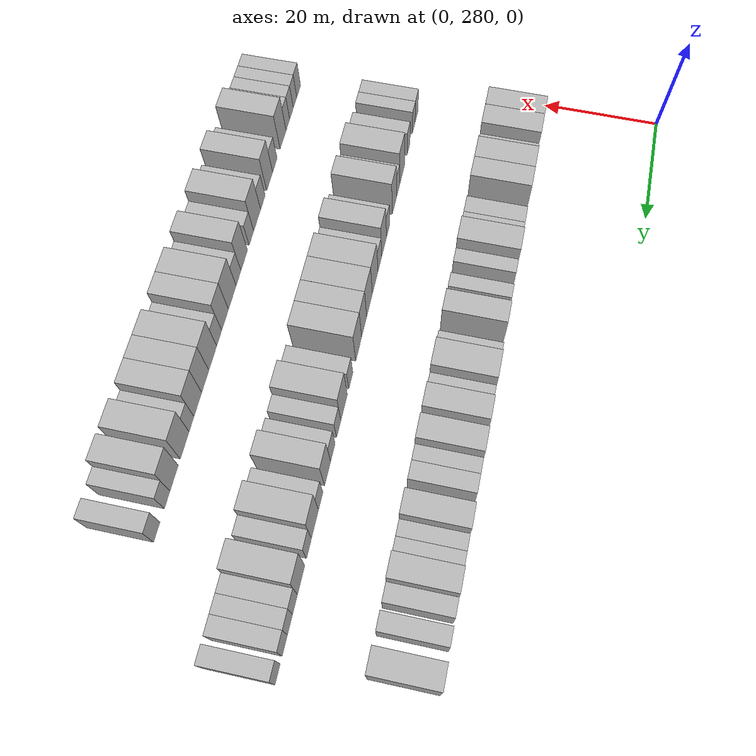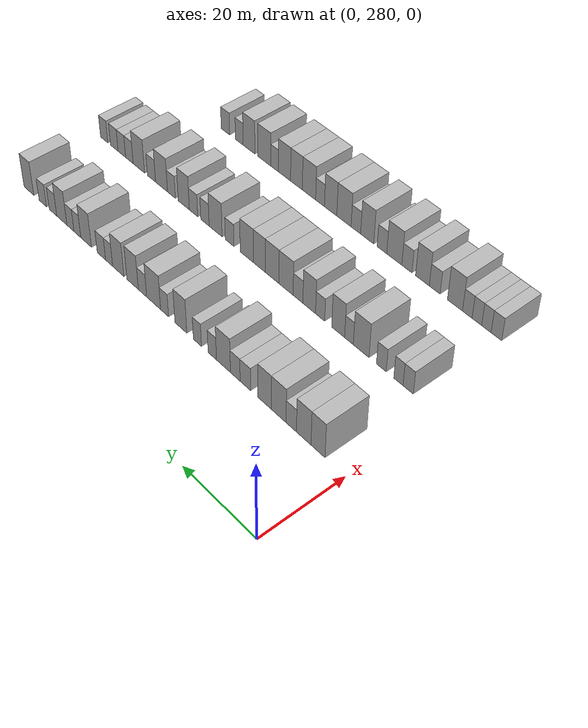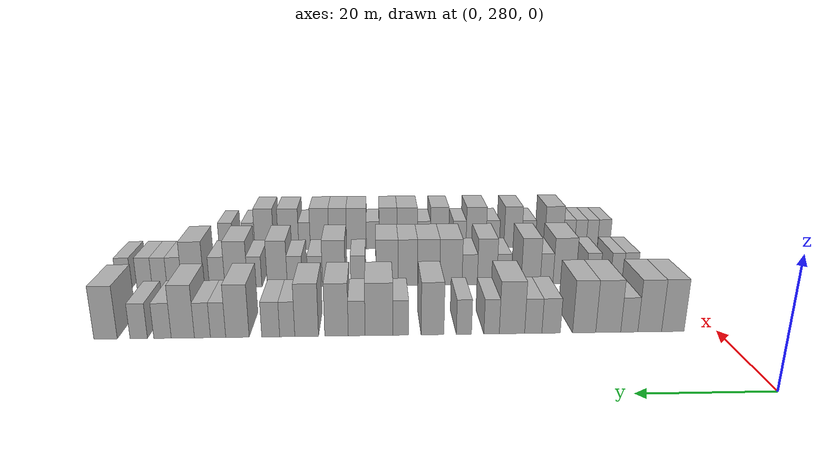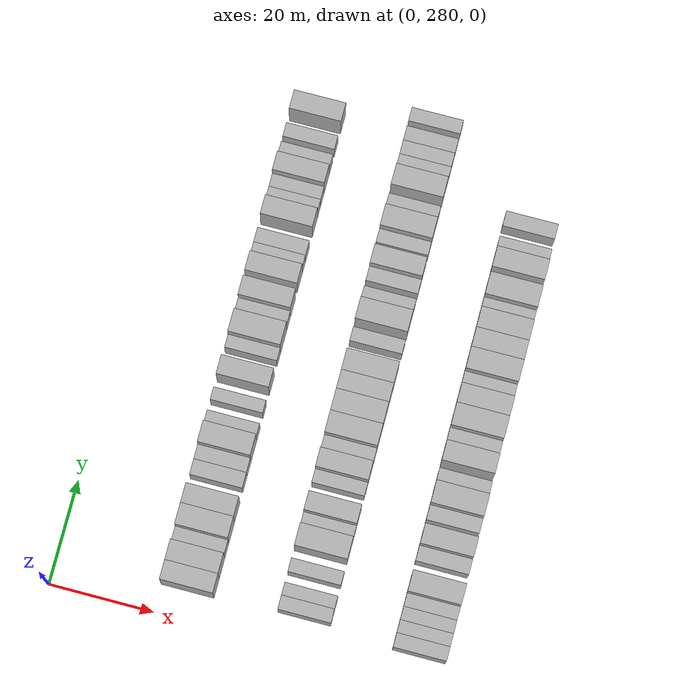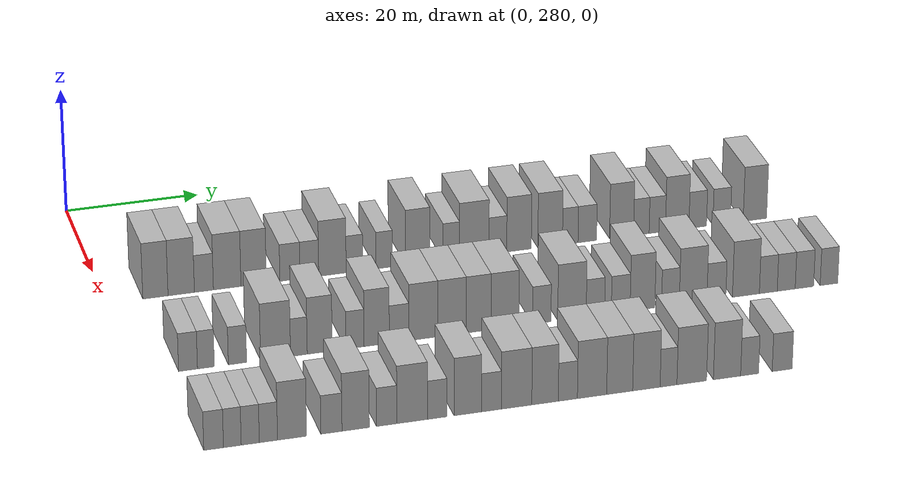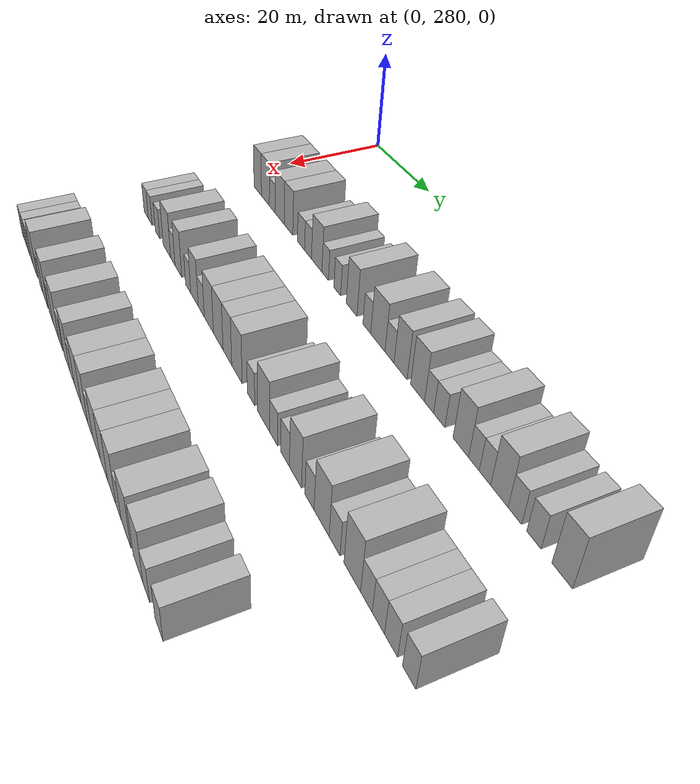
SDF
<sdf version="1.6">
 <world name="default">
  <model name="building_161">
   <static>1</static>
   <pose>25.0000 287.2330 0 0.000000 0.000000 0.000000</pose>
   <link name="link">
    <pose>0 0 4.50 0 0 0</pose>
    <collision name="collision"><geometry><box><size>10.0000 3.6991 9.0000</size></box></geometry></collision>
    <visual name="visual">
     <cast_shadows>0</cast_shadows>
     <geometry><box><size>10.0000 3.6991 9.0000</size></box></geometry>
     <material>
      <script>
       <uri>model://HANNAS_wall/materials/scripts</uri>
       <uri>model://HANNAS_wall/materials/textures</uri>
       <name>vrc/HANNAS_wall</name>
      </script>
     </material>
    </visual>
   </link>
  </model>
  <model name="building_162">
   <static>1</static>
   <pose>25.0000 291.0274 0 0.000000 0.000000 0.000000</pose>
   <link name="link">
    <pose>0 0 4.50 0 0 0</pose>
    <collision name="collision"><geometry><box><size>10.0000 3.8896 9.0000</size></box></geometry></collision>
    <visual name="visual">
     <cast_shadows>0</cast_shadows>
     <geometry><box><size>10.0000 3.8896 9.0000</size></box></geometry>
     <material>
      <script>
       <uri>model://HANNAS_wall/materials/scripts</uri>
       <uri>model://HANNAS_wall/materials/textures</uri>
       <name>vrc/HANNAS_wall</name>
      </script>
     </material>
    </visual>
   </link>
  </model>
  <model name="building_163">
   <static>1</static>
   <pose>25.0000 294.3725 0 0.000000 0.000000 0.000000</pose>
   <link name="link">
    <pose>0 0 3.00 0 0 0</pose>
    <collision name="collision"><geometry><box><size>10.0000 2.8007 6.0000</size></box></geometry></collision>
    <visual name="visual">
     <cast_shadows>0</cast_shadows>
     <geometry><box><size>10.0000 2.8007 6.0000</size></box></geometry>
     <material>
      <script>
       <uri>model://HANNAS_wall/materials/scripts</uri>
       <uri>model://HANNAS_wall/materials/textures</uri>
       <name>vrc/HANNAS_wall</name>
      </script>
     </material>
    </visual>
   </link>
  </model>
  <model name="building_164">
   <static>1</static>
   <pose>25.0000 297.8163 0 0.000000 0.000000 0.000000</pose>
   <link name="link">
    <pose>0 0 4.50 0 0 0</pose>
    <collision name="collision"><geometry><box><size>10.0000 4.0869 9.0000</size></box></geometry></collision>
    <visual name="visual">
     <cast_shadows>0</cast_shadows>
     <geometry><box><size>10.0000 4.0869 9.0000</size></box></geometry>
     <material>
      <script>
       <uri>model://HANNAS_wall/materials/scripts</uri>
       <uri>model://HANNAS_wall/materials/textures</uri>
       <name>vrc/HANNAS_wall</name>
      </script>
     </material>
    </visual>
   </link>
  </model>
  <model name="building_165">
   <static>1</static>
   <pose>25.0000 301.7451 0 0.000000 0.000000 0.000000</pose>
   <link name="link">
    <pose>0 0 4.50 0 0 0</pose>
    <collision name="collision"><geometry><box><size>10.0000 3.7707 9.0000</size></box></geometry></collision>
    <visual name="visual">
     <cast_shadows>0</cast_shadows>
     <geometry><box><size>10.0000 3.7707 9.0000</size></box></geometry>
     <material>
      <script>
       <uri>model://HANNAS_wall/materials/scripts</uri>
       <uri>model://HANNAS_wall/materials/textures</uri>
       <name>vrc/HANNAS_wall</name>
      </script>
     </material>
    </visual>
   </link>
  </model>
  <model name="building_166">
   <static>1</static>
   <pose>25.0000 307.1302 0 0.000000 0.000000 0.000000</pose>
   <link name="link">
    <pose>0 0 3.00 0 0 0</pose>
    <collision name="collision"><geometry><box><size>10.0000 2.9996 6.0000</size></box></geometry></collision>
    <visual name="visual">
     <cast_shadows>0</cast_shadows>
     <geometry><box><size>10.0000 2.9996 6.0000</size></box></geometry>
     <material>
      <script>
       <uri>model://HANNAS_wall/materials/scripts</uri>
       <uri>model://HANNAS_wall/materials/textures</uri>
       <name>vrc/HANNAS_wall</name>
      </script>
     </material>
    </visual>
   </link>
  </model>
  <model name="building_167">
   <static>1</static>
   <pose>25.0000 310.0317 0 0.000000 0.000000 0.000000</pose>
   <link name="link">
    <pose>0 0 3.00 0 0 0</pose>
    <collision name="collision"><geometry><box><size>10.0000 2.8034 6.0000</size></box></geometry></collision>
    <visual name="visual">
     <cast_shadows>0</cast_shadows>
     <geometry><box><size>10.0000 2.8034 6.0000</size></box></geometry>
     <material>
      <script>
       <uri>model://HANNAS_wall/materials/scripts</uri>
       <uri>model://HANNAS_wall/materials/textures</uri>
       <name>vrc/HANNAS_wall</name>
      </script>
     </material>
    </visual>
   </link>
  </model>
  <model name="building_168">
   <static>1</static>
   <pose>25.0000 313.4882 0 0.000000 0.000000 0.000000</pose>
   <link name="link">
    <pose>0 0 4.50 0 0 0</pose>
    <collision name="collision"><geometry><box><size>10.0000 4.1097 9.0000</size></box></geometry></collision>
    <visual name="visual">
     <cast_shadows>0</cast_shadows>
     <geometry><box><size>10.0000 4.1097 9.0000</size></box></geometry>
     <material>
      <script>
       <uri>model://HANNAS_wall/materials/scripts</uri>
       <uri>model://HANNAS_wall/materials/textures</uri>
       <name>vrc/HANNAS_wall</name>
      </script>
     </material>
    </visual>
   </link>
  </model>
  <model name="building_169">
   <static>1</static>
   <pose>25.0000 316.7893 0 0.000000 0.000000 0.000000</pose>
   <link name="link">
    <pose>0 0 3.00 0 0 0</pose>
    <collision name="collision"><geometry><box><size>10.0000 2.4924 6.0000</size></box></geometry></collision>
    <visual name="visual">
     <cast_shadows>0</cast_shadows>
     <geometry><box><size>10.0000 2.4924 6.0000</size></box></geometry>
     <material>
      <script>
       <uri>model://HANNAS_wall/materials/scripts</uri>
       <uri>model://HANNAS_wall/materials/textures</uri>
       <name>vrc/HANNAS_wall</name>
      </script>
     </material>
    </visual>
   </link>
  </model>
  <model name="building_170">
   <static>1</static>
   <pose>25.0000 321.2626 0 0.000000 0.000000 0.000000</pose>
   <link name="link">
    <pose>0 0 3.00 0 0 0</pose>
    <collision name="collision"><geometry><box><size>10.0000 2.4542 6.0000</size></box></geometry></collision>
    <visual name="visual">
     <cast_shadows>0</cast_shadows>
     <geometry><box><size>10.0000 2.4542 6.0000</size></box></geometry>
     <material>
      <script>
       <uri>model://HANNAS_wall/materials/scripts</uri>
       <uri>model://HANNAS_wall/materials/textures</uri>
       <name>vrc/HANNAS_wall</name>
      </script>
     </material>
    </visual>
   </link>
  </model>
  <model name="building_171">
   <static>1</static>
   <pose>25.0000 326.3280 0 0.000000 0.000000 0.000000</pose>
   <link name="link">
    <pose>0 0 4.50 0 0 0</pose>
    <collision name="collision"><geometry><box><size>10.0000 3.6766 9.0000</size></box></geometry></collision>
    <visual name="visual">
     <cast_shadows>0</cast_shadows>
     <geometry><box><size>10.0000 3.6766 9.0000</size></box></geometry>
     <material>
      <script>
       <uri>model://HANNAS_wall/materials/scripts</uri>
       <uri>model://HANNAS_wall/materials/textures</uri>
       <name>vrc/HANNAS_wall</name>
      </script>
     </material>
    </visual>
   </link>
  </model>
  <model name="building_172">
   <static>1</static>
   <pose>25.0000 331.4191 0 0.000000 0.000000 0.000000</pose>
   <link name="link">
    <pose>0 0 3.00 0 0 0</pose>
    <collision name="collision"><geometry><box><size>10.0000 2.5056 6.0000</size></box></geometry></collision>
    <visual name="visual">
     <cast_shadows>0</cast_shadows>
     <geometry><box><size>10.0000 2.5056 6.0000</size></box></geometry>
     <material>
      <script>
       <uri>model://HANNAS_wall/materials/scripts</uri>
       <uri>model://HANNAS_wall/materials/textures</uri>
       <name>vrc/HANNAS_wall</name>
      </script>
     </material>
    </visual>
   </link>
  </model>
  <model name="building_173">
   <static>1</static>
   <pose>25.0000 334.9125 0 0.000000 0.000000 0.000000</pose>
   <link name="link">
    <pose>0 0 4.50 0 0 0</pose>
    <collision name="collision"><geometry><box><size>10.0000 4.4812 9.0000</size></box></geometry></collision>
    <visual name="visual">
     <cast_shadows>0</cast_shadows>
     <geometry><box><size>10.0000 4.4812 9.0000</size></box></geometry>
     <material>
      <script>
       <uri>model://HANNAS_wall/materials/scripts</uri>
       <uri>model://HANNAS_wall/materials/textures</uri>
       <name>vrc/HANNAS_wall</name>
      </script>
     </material>
    </visual>
   </link>
  </model>
  <model name="building_174">
   <static>1</static>
   <pose>25.0000 338.5033 0 0.000000 0.000000 0.000000</pose>
   <link name="link">
    <pose>0 0 3.00 0 0 0</pose>
    <collision name="collision"><geometry><box><size>10.0000 2.7006 6.0000</size></box></geometry></collision>
    <visual name="visual">
     <cast_shadows>0</cast_shadows>
     <geometry><box><size>10.0000 2.7006 6.0000</size></box></geometry>
     <material>
      <script>
       <uri>model://HANNAS_wall/materials/scripts</uri>
       <uri>model://HANNAS_wall/materials/textures</uri>
       <name>vrc/HANNAS_wall</name>
      </script>
     </material>
    </visual>
   </link>
  </model>
  <model name="building_175">
   <static>1</static>
   <pose>25.0000 341.7340 0 0.000000 0.000000 0.000000</pose>
   <link name="link">
    <pose>0 0 4.50 0 0 0</pose>
    <collision name="collision"><geometry><box><size>10.0000 3.7606 9.0000</size></box></geometry></collision>
    <visual name="visual">
     <cast_shadows>0</cast_shadows>
     <geometry><box><size>10.0000 3.7606 9.0000</size></box></geometry>
     <material>
      <script>
       <uri>model://HANNAS_wall/materials/scripts</uri>
       <uri>model://HANNAS_wall/materials/textures</uri>
       <name>vrc/HANNAS_wall</name>
      </script>
     </material>
    </visual>
   </link>
  </model>
  <model name="building_176">
   <static>1</static>
   <pose>25.0000 346.5074 0 0.000000 0.000000 0.000000</pose>
   <link name="link">
    <pose>0 0 4.50 0 0 0</pose>
    <collision name="collision"><geometry><box><size>10.0000 3.7862 9.0000</size></box></geometry></collision>
    <visual name="visual">
     <cast_shadows>0</cast_shadows>
     <geometry><box><size>10.0000 3.7862 9.0000</size></box></geometry>
     <material>
      <script>
       <uri>model://HANNAS_wall/materials/scripts</uri>
       <uri>model://HANNAS_wall/materials/textures</uri>
       <name>vrc/HANNAS_wall</name>
      </script>
     </material>
    </visual>
   </link>
  </model>
  <model name="building_177">
   <static>1</static>
   <pose>25.0000 349.6013 0 0.000000 0.000000 0.000000</pose>
   <link name="link">
    <pose>0 0 3.00 0 0 0</pose>
    <collision name="collision"><geometry><box><size>10.0000 2.4017 6.0000</size></box></geometry></collision>
    <visual name="visual">
     <cast_shadows>0</cast_shadows>
     <geometry><box><size>10.0000 2.4017 6.0000</size></box></geometry>
     <material>
      <script>
       <uri>model://HANNAS_wall/materials/scripts</uri>
       <uri>model://HANNAS_wall/materials/textures</uri>
       <name>vrc/HANNAS_wall</name>
      </script>
     </material>
    </visual>
   </link>
  </model>
  <model name="building_178">
   <static>1</static>
   <pose>25.0000 352.2318 0 0.000000 0.000000 0.000000</pose>
   <link name="link">
    <pose>0 0 3.00 0 0 0</pose>
    <collision name="collision"><geometry><box><size>10.0000 2.8594 6.0000</size></box></geometry></collision>
    <visual name="visual">
     <cast_shadows>0</cast_shadows>
     <geometry><box><size>10.0000 2.8594 6.0000</size></box></geometry>
     <material>
      <script>
       <uri>model://HANNAS_wall/materials/scripts</uri>
       <uri>model://HANNAS_wall/materials/textures</uri>
       <name>vrc/HANNAS_wall</name>
      </script>
     </material>
    </visual>
   </link>
  </model>
  <model name="building_179">
   <static>1</static>
   <pose>25.0000 357.5229 0 0.000000 0.000000 0.000000</pose>
   <link name="link">
    <pose>0 0 4.50 0 0 0</pose>
    <collision name="collision"><geometry><box><size>10.0000 3.7228 9.0000</size></box></geometry></collision>
    <visual name="visual">
     <cast_shadows>0</cast_shadows>
     <geometry><box><size>10.0000 3.7228 9.0000</size></box></geometry>
     <material>
      <script>
       <uri>model://HANNAS_wall/materials/scripts</uri>
       <uri>model://HANNAS_wall/materials/textures</uri>
       <name>vrc/HANNAS_wall</name>
      </script>
     </material>
    </visual>
   </link>
  </model>
  <model name="building_180">
   <static>1</static>
   <pose>25.0000 360.5943 0 0.000000 0.000000 0.000000</pose>
   <link name="link">
    <pose>0 0 3.00 0 0 0</pose>
    <collision name="collision"><geometry><box><size>10.0000 2.4199 6.0000</size></box></geometry></collision>
    <visual name="visual">
     <cast_shadows>0</cast_shadows>
     <geometry><box><size>10.0000 2.4199 6.0000</size></box></geometry>
     <material>
      <script>
       <uri>model://HANNAS_wall/materials/scripts</uri>
       <uri>model://HANNAS_wall/materials/textures</uri>
       <name>vrc/HANNAS_wall</name>
      </script>
     </material>
    </visual>
   </link>
  </model>
  <model name="building_181">
   <static>1</static>
   <pose>25.0000 363.0713 0 0.000000 0.000000 0.000000</pose>
   <link name="link">
    <pose>0 0 3.00 0 0 0</pose>
    <collision name="collision"><geometry><box><size>10.0000 2.5341 6.0000</size></box></geometry></collision>
    <visual name="visual">
     <cast_shadows>0</cast_shadows>
     <geometry><box><size>10.0000 2.5341 6.0000</size></box></geometry>
     <material>
      <script>
       <uri>model://HANNAS_wall/materials/scripts</uri>
       <uri>model://HANNAS_wall/materials/textures</uri>
       <name>vrc/HANNAS_wall</name>
      </script>
     </material>
    </visual>
   </link>
  </model>
  <model name="building_182">
   <static>1</static>
   <pose>25.0000 366.1705 0 0.000000 0.000000 0.000000</pose>
   <link name="link">
    <pose>0 0 4.50 0 0 0</pose>
    <collision name="collision"><geometry><box><size>10.0000 3.6644 9.0000</size></box></geometry></collision>
    <visual name="visual">
     <cast_shadows>0</cast_shadows>
     <geometry><box><size>10.0000 3.6644 9.0000</size></box></geometry>
     <material>
      <script>
       <uri>model://HANNAS_wall/materials/scripts</uri>
       <uri>model://HANNAS_wall/materials/textures</uri>
       <name>vrc/HANNAS_wall</name>
      </script>
     </material>
    </visual>
   </link>
  </model>
  <model name="building_183">
   <static>1</static>
   <pose>25.0000 369.3788 0 0.000000 0.000000 0.000000</pose>
   <link name="link">
    <pose>0 0 3.00 0 0 0</pose>
    <collision name="collision"><geometry><box><size>10.0000 2.7521 6.0000</size></box></geometry></collision>
    <visual name="visual">
     <cast_shadows>0</cast_shadows>
     <geometry><box><size>10.0000 2.7521 6.0000</size></box></geometry>
     <material>
      <script>
       <uri>model://HANNAS_wall/materials/scripts</uri>
       <uri>model://HANNAS_wall/materials/textures</uri>
       <name>vrc/HANNAS_wall</name>
      </script>
     </material>
    </visual>
   </link>
  </model>
  <model name="building_184">
   <static>1</static>
   <pose>25.0000 373.1291 0 0.000000 0.000000 0.000000</pose>
   <link name="link">
    <pose>0 0 3.00 0 0 0</pose>
    <collision name="collision"><geometry><box><size>10.0000 2.7484 6.0000</size></box></geometry></collision>
    <visual name="visual">
     <cast_shadows>0</cast_shadows>
     <geometry><box><size>10.0000 2.7484 6.0000</size></box></geometry>
     <material>
      <script>
       <uri>model://HANNAS_wall/materials/scripts</uri>
       <uri>model://HANNAS_wall/materials/textures</uri>
       <name>vrc/HANNAS_wall</name>
      </script>
     </material>
    </visual>
   </link>
  </model>
  <model name="building_185">
   <static>1</static>
   <pose>25.0000 378.3436 0 0.000000 0.000000 0.000000</pose>
   <link name="link">
    <pose>0 0 4.50 0 0 0</pose>
    <collision name="collision"><geometry><box><size>10.0000 3.6808 9.0000</size></box></geometry></collision>
    <visual name="visual">
     <cast_shadows>0</cast_shadows>
     <geometry><box><size>10.0000 3.6808 9.0000</size></box></geometry>
     <material>
      <script>
       <uri>model://HANNAS_wall/materials/scripts</uri>
       <uri>model://HANNAS_wall/materials/textures</uri>
       <name>vrc/HANNAS_wall</name>
      </script>
     </material>
    </visual>
   </link>
  </model>
  <model name="building_345">
   <static>1</static>
   <pose>47.0000 287.2376 0 0.000000 0.000000 0.000000</pose>
   <link name="link">
    <pose>0 0 3.00 0 0 0</pose>
    <collision name="collision"><geometry><box><size>10.0000 2.6862 6.0000</size></box></geometry></collision>
    <visual name="visual">
     <cast_shadows>0</cast_shadows>
     <geometry><box><size>10.0000 2.6862 6.0000</size></box></geometry>
     <material>
      <script>
       <uri>model://HANNAS_wall/materials/scripts</uri>
       <uri>model://HANNAS_wall/materials/textures</uri>
       <name>vrc/HANNAS_wall</name>
      </script>
     </material>
    </visual>
   </link>
  </model>
  <model name="building_346">
   <static>1</static>
   <pose>47.0000 289.7889 0 0.000000 0.000000 0.000000</pose>
   <link name="link">
    <pose>0 0 3.00 0 0 0</pose>
    <collision name="collision"><geometry><box><size>10.0000 2.4164 6.0000</size></box></geometry></collision>
    <visual name="visual">
     <cast_shadows>0</cast_shadows>
     <geometry><box><size>10.0000 2.4164 6.0000</size></box></geometry>
     <material>
      <script>
       <uri>model://HANNAS_wall/materials/scripts</uri>
       <uri>model://HANNAS_wall/materials/textures</uri>
       <name>vrc/HANNAS_wall</name>
      </script>
     </material>
    </visual>
   </link>
  </model>
  <model name="building_347">
   <static>1</static>
   <pose>47.0000 294.3080 0 0.000000 0.000000 0.000000</pose>
   <link name="link">
    <pose>0 0 3.00 0 0 0</pose>
    <collision name="collision"><geometry><box><size>10.0000 2.6219 6.0000</size></box></geometry></collision>
    <visual name="visual">
     <cast_shadows>0</cast_shadows>
     <geometry><box><size>10.0000 2.6219 6.0000</size></box></geometry>
     <material>
      <script>
       <uri>model://HANNAS_wall/materials/scripts</uri>
       <uri>model://HANNAS_wall/materials/textures</uri>
       <name>vrc/HANNAS_wall</name>
      </script>
     </material>
    </visual>
   </link>
  </model>
  <model name="building_348">
   <static>1</static>
   <pose>47.0000 299.7750 0 0.000000 0.000000 0.000000</pose>
   <link name="link">
    <pose>0 0 4.50 0 0 0</pose>
    <collision name="collision"><geometry><box><size>10.0000 4.3120 9.0000</size></box></geometry></collision>
    <visual name="visual">
     <cast_shadows>0</cast_shadows>
     <geometry><box><size>10.0000 4.3120 9.0000</size></box></geometry>
     <material>
      <script>
       <uri>model://HANNAS_wall/materials/scripts</uri>
       <uri>model://HANNAS_wall/materials/textures</uri>
       <name>vrc/HANNAS_wall</name>
      </script>
     </material>
    </visual>
   </link>
  </model>
  <model name="building_349">
   <static>1</static>
   <pose>47.0000 303.1381 0 0.000000 0.000000 0.000000</pose>
   <link name="link">
    <pose>0 0 3.00 0 0 0</pose>
    <collision name="collision"><geometry><box><size>10.0000 2.4143 6.0000</size></box></geometry></collision>
    <visual name="visual">
     <cast_shadows>0</cast_shadows>
     <geometry><box><size>10.0000 2.4143 6.0000</size></box></geometry>
     <material>
      <script>
       <uri>model://HANNAS_wall/materials/scripts</uri>
       <uri>model://HANNAS_wall/materials/textures</uri>
       <name>vrc/HANNAS_wall</name>
      </script>
     </material>
    </visual>
   </link>
  </model>
  <model name="building_350">
   <static>1</static>
   <pose>47.0000 306.1534 0 0.000000 0.000000 0.000000</pose>
   <link name="link">
    <pose>0 0 4.50 0 0 0</pose>
    <collision name="collision"><geometry><box><size>10.0000 3.6163 9.0000</size></box></geometry></collision>
    <visual name="visual">
     <cast_shadows>0</cast_shadows>
     <geometry><box><size>10.0000 3.6163 9.0000</size></box></geometry>
     <material>
      <script>
       <uri>model://HANNAS_wall/materials/scripts</uri>
       <uri>model://HANNAS_wall/materials/textures</uri>
       <name>vrc/HANNAS_wall</name>
      </script>
     </material>
    </visual>
   </link>
  </model>
  <model name="building_351">
   <static>1</static>
   <pose>47.0000 311.2730 0 0.000000 0.000000 0.000000</pose>
   <link name="link">
    <pose>0 0 3.00 0 0 0</pose>
    <collision name="collision"><geometry><box><size>10.0000 2.6229 6.0000</size></box></geometry></collision>
    <visual name="visual">
     <cast_shadows>0</cast_shadows>
     <geometry><box><size>10.0000 2.6229 6.0000</size></box></geometry>
     <material>
      <script>
       <uri>model://HANNAS_wall/materials/scripts</uri>
       <uri>model://HANNAS_wall/materials/textures</uri>
       <name>vrc/HANNAS_wall</name>
      </script>
     </material>
    </visual>
   </link>
  </model>
  <model name="building_352">
   <static>1</static>
   <pose>47.0000 314.4226 0 0.000000 0.000000 0.000000</pose>
   <link name="link">
    <pose>0 0 4.50 0 0 0</pose>
    <collision name="collision"><geometry><box><size>10.0000 3.6764 9.0000</size></box></geometry></collision>
    <visual name="visual">
     <cast_shadows>0</cast_shadows>
     <geometry><box><size>10.0000 3.6764 9.0000</size></box></geometry>
     <material>
      <script>
       <uri>model://HANNAS_wall/materials/scripts</uri>
       <uri>model://HANNAS_wall/materials/textures</uri>
       <name>vrc/HANNAS_wall</name>
      </script>
     </material>
    </visual>
   </link>
  </model>
  <model name="building_353">
   <static>1</static>
   <pose>47.0000 317.6992 0 0.000000 0.000000 0.000000</pose>
   <link name="link">
    <pose>0 0 3.00 0 0 0</pose>
    <collision name="collision"><geometry><box><size>10.0000 2.8766 6.0000</size></box></geometry></collision>
    <visual name="visual">
     <cast_shadows>0</cast_shadows>
     <geometry><box><size>10.0000 2.8766 6.0000</size></box></geometry>
     <material>
      <script>
       <uri>model://HANNAS_wall/materials/scripts</uri>
       <uri>model://HANNAS_wall/materials/textures</uri>
       <name>vrc/HANNAS_wall</name>
      </script>
     </material>
    </visual>
   </link>
  </model>
  <model name="building_354">
   <static>1</static>
   <pose>47.0000 321.2453 0 0.000000 0.000000 0.000000</pose>
   <link name="link">
    <pose>0 0 4.50 0 0 0</pose>
    <collision name="collision"><geometry><box><size>10.0000 4.2156 9.0000</size></box></geometry></collision>
    <visual name="visual">
     <cast_shadows>0</cast_shadows>
     <geometry><box><size>10.0000 4.2156 9.0000</size></box></geometry>
     <material>
      <script>
       <uri>model://HANNAS_wall/materials/scripts</uri>
       <uri>model://HANNAS_wall/materials/textures</uri>
       <name>vrc/HANNAS_wall</name>
      </script>
     </material>
    </visual>
   </link>
  </model>
  <model name="building_355">
   <static>1</static>
   <pose>47.0000 325.4493 0 0.000000 0.000000 0.000000</pose>
   <link name="link">
    <pose>0 0 4.50 0 0 0</pose>
    <collision name="collision"><geometry><box><size>10.0000 4.1925 9.0000</size></box></geometry></collision>
    <visual name="visual">
     <cast_shadows>0</cast_shadows>
     <geometry><box><size>10.0000 4.1925 9.0000</size></box></geometry>
     <material>
      <script>
       <uri>model://HANNAS_wall/materials/scripts</uri>
       <uri>model://HANNAS_wall/materials/textures</uri>
       <name>vrc/HANNAS_wall</name>
      </script>
     </material>
    </visual>
   </link>
  </model>
  <model name="building_356">
   <static>1</static>
   <pose>47.0000 329.3556 0 0.000000 0.000000 0.000000</pose>
   <link name="link">
    <pose>0 0 4.50 0 0 0</pose>
    <collision name="collision"><geometry><box><size>10.0000 3.6200 9.0000</size></box></geometry></collision>
    <visual name="visual">
     <cast_shadows>0</cast_shadows>
     <geometry><box><size>10.0000 3.6200 9.0000</size></box></geometry>
     <material>
      <script>
       <uri>model://HANNAS_wall/materials/scripts</uri>
       <uri>model://HANNAS_wall/materials/textures</uri>
       <name>vrc/HANNAS_wall</name>
      </script>
     </material>
    </visual>
   </link>
  </model>
  <model name="building_357">
   <static>1</static>
   <pose>47.0000 333.2303 0 0.000000 0.000000 0.000000</pose>
   <link name="link">
    <pose>0 0 4.50 0 0 0</pose>
    <collision name="collision"><geometry><box><size>10.0000 4.1295 9.0000</size></box></geometry></collision>
    <visual name="visual">
     <cast_shadows>0</cast_shadows>
     <geometry><box><size>10.0000 4.1295 9.0000</size></box></geometry>
     <material>
      <script>
       <uri>model://HANNAS_wall/materials/scripts</uri>
       <uri>model://HANNAS_wall/materials/textures</uri>
       <name>vrc/HANNAS_wall</name>
      </script>
     </material>
    </visual>
   </link>
  </model>
  <model name="building_358">
   <static>1</static>
   <pose>47.0000 338.6730 0 0.000000 0.000000 0.000000</pose>
   <link name="link">
    <pose>0 0 3.00 0 0 0</pose>
    <collision name="collision"><geometry><box><size>10.0000 2.7559 6.0000</size></box></geometry></collision>
    <visual name="visual">
     <cast_shadows>0</cast_shadows>
     <geometry><box><size>10.0000 2.7559 6.0000</size></box></geometry>
     <material>
      <script>
       <uri>model://HANNAS_wall/materials/scripts</uri>
       <uri>model://HANNAS_wall/materials/textures</uri>
       <name>vrc/HANNAS_wall</name>
      </script>
     </material>
    </visual>
   </link>
  </model>
  <model name="building_359">
   <static>1</static>
   <pose>47.0000 343.1716 0 0.000000 0.000000 0.000000</pose>
   <link name="link">
    <pose>0 0 4.50 0 0 0</pose>
    <collision name="collision"><geometry><box><size>10.0000 4.2414 9.0000</size></box></geometry></collision>
    <visual name="visual">
     <cast_shadows>0</cast_shadows>
     <geometry><box><size>10.0000 4.2414 9.0000</size></box></geometry>
     <material>
      <script>
       <uri>model://HANNAS_wall/materials/scripts</uri>
       <uri>model://HANNAS_wall/materials/textures</uri>
       <name>vrc/HANNAS_wall</name>
      </script>
     </material>
    </visual>
   </link>
  </model>
  <model name="building_360">
   <static>1</static>
   <pose>47.0000 346.6687 0 0.000000 0.000000 0.000000</pose>
   <link name="link">
    <pose>0 0 3.00 0 0 0</pose>
    <collision name="collision"><geometry><box><size>10.0000 2.7527 6.0000</size></box></geometry></collision>
    <visual name="visual">
     <cast_shadows>0</cast_shadows>
     <geometry><box><size>10.0000 2.7527 6.0000</size></box></geometry>
     <material>
      <script>
       <uri>model://HANNAS_wall/materials/scripts</uri>
       <uri>model://HANNAS_wall/materials/textures</uri>
       <name>vrc/HANNAS_wall</name>
      </script>
     </material>
    </visual>
   </link>
  </model>
  <model name="building_361">
   <static>1</static>
   <pose>47.0000 350.4525 0 0.000000 0.000000 0.000000</pose>
   <link name="link">
    <pose>0 0 3.00 0 0 0</pose>
    <collision name="collision"><geometry><box><size>10.0000 2.8149 6.0000</size></box></geometry></collision>
    <visual name="visual">
     <cast_shadows>0</cast_shadows>
     <geometry><box><size>10.0000 2.8149 6.0000</size></box></geometry>
     <material>
      <script>
       <uri>model://HANNAS_wall/materials/scripts</uri>
       <uri>model://HANNAS_wall/materials/textures</uri>
       <name>vrc/HANNAS_wall</name>
      </script>
     </material>
    </visual>
   </link>
  </model>
  <model name="building_362">
   <static>1</static>
   <pose>47.0000 353.7202 0 0.000000 0.000000 0.000000</pose>
   <link name="link">
    <pose>0 0 4.50 0 0 0</pose>
    <collision name="collision"><geometry><box><size>10.0000 3.7206 9.0000</size></box></geometry></collision>
    <visual name="visual">
     <cast_shadows>0</cast_shadows>
     <geometry><box><size>10.0000 3.7206 9.0000</size></box></geometry>
     <material>
      <script>
       <uri>model://HANNAS_wall/materials/scripts</uri>
       <uri>model://HANNAS_wall/materials/textures</uri>
       <name>vrc/HANNAS_wall</name>
      </script>
     </material>
    </visual>
   </link>
  </model>
  <model name="building_363">
   <static>1</static>
   <pose>47.0000 357.9215 0 0.000000 0.000000 0.000000</pose>
   <link name="link">
    <pose>0 0 3.00 0 0 0</pose>
    <collision name="collision"><geometry><box><size>10.0000 2.6820 6.0000</size></box></geometry></collision>
    <visual name="visual">
     <cast_shadows>0</cast_shadows>
     <geometry><box><size>10.0000 2.6820 6.0000</size></box></geometry>
     <material>
      <script>
       <uri>model://HANNAS_wall/materials/scripts</uri>
       <uri>model://HANNAS_wall/materials/textures</uri>
       <name>vrc/HANNAS_wall</name>
      </script>
     </material>
    </visual>
   </link>
  </model>
  <model name="building_364">
   <static>1</static>
   <pose>47.0000 361.3502 0 0.000000 0.000000 0.000000</pose>
   <link name="link">
    <pose>0 0 4.50 0 0 0</pose>
    <collision name="collision"><geometry><box><size>10.0000 4.1754 9.0000</size></box></geometry></collision>
    <visual name="visual">
     <cast_shadows>0</cast_shadows>
     <geometry><box><size>10.0000 4.1754 9.0000</size></box></geometry>
     <material>
      <script>
       <uri>model://HANNAS_wall/materials/scripts</uri>
       <uri>model://HANNAS_wall/materials/textures</uri>
       <name>vrc/HANNAS_wall</name>
      </script>
     </material>
    </visual>
   </link>
  </model>
  <model name="building_365">
   <static>1</static>
   <pose>47.0000 364.8722 0 0.000000 0.000000 0.000000</pose>
   <link name="link">
    <pose>0 0 3.00 0 0 0</pose>
    <collision name="collision"><geometry><box><size>10.0000 2.8685 6.0000</size></box></geometry></collision>
    <visual name="visual">
     <cast_shadows>0</cast_shadows>
     <geometry><box><size>10.0000 2.8685 6.0000</size></box></geometry>
     <material>
      <script>
       <uri>model://HANNAS_wall/materials/scripts</uri>
       <uri>model://HANNAS_wall/materials/textures</uri>
       <name>vrc/HANNAS_wall</name>
      </script>
     </material>
    </visual>
   </link>
  </model>
  <model name="building_366">
   <static>1</static>
   <pose>47.0000 369.3551 0 0.000000 0.000000 0.000000</pose>
   <link name="link">
    <pose>0 0 4.50 0 0 0</pose>
    <collision name="collision"><geometry><box><size>10.0000 4.0973 9.0000</size></box></geometry></collision>
    <visual name="visual">
     <cast_shadows>0</cast_shadows>
     <geometry><box><size>10.0000 4.0973 9.0000</size></box></geometry>
     <material>
      <script>
       <uri>model://HANNAS_wall/materials/scripts</uri>
       <uri>model://HANNAS_wall/materials/textures</uri>
       <name>vrc/HANNAS_wall</name>
      </script>
     </material>
    </visual>
   </link>
  </model>
  <model name="building_367">
   <static>1</static>
   <pose>47.0000 372.7650 0 0.000000 0.000000 0.000000</pose>
   <link name="link">
    <pose>0 0 3.00 0 0 0</pose>
    <collision name="collision"><geometry><box><size>10.0000 2.7224 6.0000</size></box></geometry></collision>
    <visual name="visual">
     <cast_shadows>0</cast_shadows>
     <geometry><box><size>10.0000 2.7224 6.0000</size></box></geometry>
     <material>
      <script>
       <uri>model://HANNAS_wall/materials/scripts</uri>
       <uri>model://HANNAS_wall/materials/textures</uri>
       <name>vrc/HANNAS_wall</name>
      </script>
     </material>
    </visual>
   </link>
  </model>
  <model name="building_368">
   <static>1</static>
   <pose>47.0000 375.5001 0 0.000000 0.000000 0.000000</pose>
   <link name="link">
    <pose>0 0 3.00 0 0 0</pose>
    <collision name="collision"><geometry><box><size>10.0000 2.7478 6.0000</size></box></geometry></collision>
    <visual name="visual">
     <cast_shadows>0</cast_shadows>
     <geometry><box><size>10.0000 2.7478 6.0000</size></box></geometry>
     <material>
      <script>
       <uri>model://HANNAS_wall/materials/scripts</uri>
       <uri>model://HANNAS_wall/materials/textures</uri>
       <name>vrc/HANNAS_wall</name>
      </script>
     </material>
    </visual>
   </link>
  </model>
  <model name="building_369">
   <static>1</static>
   <pose>47.0000 378.2826 0 0.000000 0.000000 0.000000</pose>
   <link name="link">
    <pose>0 0 3.00 0 0 0</pose>
    <collision name="collision"><geometry><box><size>10.0000 2.8172 6.0000</size></box></geometry></collision>
    <visual name="visual">
     <cast_shadows>0</cast_shadows>
     <geometry><box><size>10.0000 2.8172 6.0000</size></box></geometry>
     <material>
      <script>
       <uri>model://HANNAS_wall/materials/scripts</uri>
       <uri>model://HANNAS_wall/materials/textures</uri>
       <name>vrc/HANNAS_wall</name>
      </script>
     </material>
    </visual>
   </link>
  </model>
  <model name="building_370">
   <static>1</static>
   <pose>47.0000 382.0408 0 0.000000 0.000000 0.000000</pose>
   <link name="link">
    <pose>0 0 3.00 0 0 0</pose>
    <collision name="collision"><geometry><box><size>10.0000 2.6993 6.0000</size></box></geometry></collision>
    <visual name="visual">
     <cast_shadows>0</cast_shadows>
     <geometry><box><size>10.0000 2.6993 6.0000</size></box></geometry>
     <material>
      <script>
       <uri>model://HANNAS_wall/materials/scripts</uri>
       <uri>model://HANNAS_wall/materials/textures</uri>
       <name>vrc/HANNAS_wall</name>
      </script>
     </material>
    </visual>
   </link>
  </model>
  <model name="building_537">
   <static>1</static>
   <pose>69.0000 285.9737 0 0.000000 0.000000 0.000000</pose>
   <link name="link">
    <pose>0 0 3.00 0 0 0</pose>
    <collision name="collision"><geometry><box><size>10.0000 2.7240 6.0000</size></box></geometry></collision>
    <visual name="visual">
     <cast_shadows>0</cast_shadows>
     <geometry><box><size>10.0000 2.7240 6.0000</size></box></geometry>
     <material>
      <script>
       <uri>model://HANNAS_wall/materials/scripts</uri>
       <uri>model://HANNAS_wall/materials/textures</uri>
       <name>vrc/HANNAS_wall</name>
      </script>
     </material>
    </visual>
   </link>
  </model>
  <model name="building_538">
   <static>1</static>
   <pose>69.0000 288.5635 0 0.000000 0.000000 0.000000</pose>
   <link name="link">
    <pose>0 0 3.00 0 0 0</pose>
    <collision name="collision"><geometry><box><size>10.0000 2.4557 6.0000</size></box></geometry></collision>
    <visual name="visual">
     <cast_shadows>0</cast_shadows>
     <geometry><box><size>10.0000 2.4557 6.0000</size></box></geometry>
     <material>
      <script>
       <uri>model://HANNAS_wall/materials/scripts</uri>
       <uri>model://HANNAS_wall/materials/textures</uri>
       <name>vrc/HANNAS_wall</name>
      </script>
     </material>
    </visual>
   </link>
  </model>
  <model name="building_539">
   <static>1</static>
   <pose>69.0000 291.0454 0 0.000000 0.000000 0.000000</pose>
   <link name="link">
    <pose>0 0 3.00 0 0 0</pose>
    <collision name="collision"><geometry><box><size>10.0000 2.5082 6.0000</size></box></geometry></collision>
    <visual name="visual">
     <cast_shadows>0</cast_shadows>
     <geometry><box><size>10.0000 2.5082 6.0000</size></box></geometry>
     <material>
      <script>
       <uri>model://HANNAS_wall/materials/scripts</uri>
       <uri>model://HANNAS_wall/materials/textures</uri>
       <name>vrc/HANNAS_wall</name>
      </script>
     </material>
    </visual>
   </link>
  </model>
  <model name="building_540">
   <static>1</static>
   <pose>69.0000 293.5669 0 0.000000 0.000000 0.000000</pose>
   <link name="link">
    <pose>0 0 3.00 0 0 0</pose>
    <collision name="collision"><geometry><box><size>10.0000 2.5348 6.0000</size></box></geometry></collision>
    <visual name="visual">
     <cast_shadows>0</cast_shadows>
     <geometry><box><size>10.0000 2.5348 6.0000</size></box></geometry>
     <material>
      <script>
       <uri>model://HANNAS_wall/materials/scripts</uri>
       <uri>model://HANNAS_wall/materials/textures</uri>
       <name>vrc/HANNAS_wall</name>
      </script>
     </material>
    </visual>
   </link>
  </model>
  <model name="building_541">
   <static>1</static>
   <pose>69.0000 296.8542 0 0.000000 0.000000 0.000000</pose>
   <link name="link">
    <pose>0 0 4.50 0 0 0</pose>
    <collision name="collision"><geometry><box><size>10.0000 4.0398 9.0000</size></box></geometry></collision>
    <visual name="visual">
     <cast_shadows>0</cast_shadows>
     <geometry><box><size>10.0000 4.0398 9.0000</size></box></geometry>
     <material>
      <script>
       <uri>model://HANNAS_wall/materials/scripts</uri>
       <uri>model://HANNAS_wall/materials/textures</uri>
       <name>vrc/HANNAS_wall</name>
      </script>
     </material>
    </visual>
   </link>
  </model>
  <model name="building_542">
   <static>1</static>
   <pose>69.0000 302.3535 0 0.000000 0.000000 0.000000</pose>
   <link name="link">
    <pose>0 0 3.00 0 0 0</pose>
    <collision name="collision"><geometry><box><size>10.0000 2.9590 6.0000</size></box></geometry></collision>
    <visual name="visual">
     <cast_shadows>0</cast_shadows>
     <geometry><box><size>10.0000 2.9590 6.0000</size></box></geometry>
     <material>
      <script>
       <uri>model://HANNAS_wall/materials/scripts</uri>
       <uri>model://HANNAS_wall/materials/textures</uri>
       <name>vrc/HANNAS_wall</name>
      </script>
     </material>
    </visual>
   </link>
  </model>
  <model name="building_543">
   <static>1</static>
   <pose>69.0000 305.7486 0 0.000000 0.000000 0.000000</pose>
   <link name="link">
    <pose>0 0 4.50 0 0 0</pose>
    <collision name="collision"><geometry><box><size>10.0000 3.8310 9.0000</size></box></geometry></collision>
    <visual name="visual">
     <cast_shadows>0</cast_shadows>
     <geometry><box><size>10.0000 3.8310 9.0000</size></box></geometry>
     <material>
      <script>
       <uri>model://HANNAS_wall/materials/scripts</uri>
       <uri>model://HANNAS_wall/materials/textures</uri>
       <name>vrc/HANNAS_wall</name>
      </script>
     </material>
    </visual>
   </link>
  </model>
  <model name="building_544">
   <static>1</static>
   <pose>69.0000 310.1039 0 0.000000 0.000000 0.000000</pose>
   <link name="link">
    <pose>0 0 3.00 0 0 0</pose>
    <collision name="collision"><geometry><box><size>10.0000 2.8796 6.0000</size></box></geometry></collision>
    <visual name="visual">
     <cast_shadows>0</cast_shadows>
     <geometry><box><size>10.0000 2.8796 6.0000</size></box></geometry>
     <material>
      <script>
       <uri>model://HANNAS_wall/materials/scripts</uri>
       <uri>model://HANNAS_wall/materials/textures</uri>
       <name>vrc/HANNAS_wall</name>
      </script>
     </material>
    </visual>
   </link>
  </model>
  <model name="building_545">
   <static>1</static>
   <pose>69.0000 313.7016 0 0.000000 0.000000 0.000000</pose>
   <link name="link">
    <pose>0 0 4.50 0 0 0</pose>
    <collision name="collision"><geometry><box><size>10.0000 4.3157 9.0000</size></box></geometry></collision>
    <visual name="visual">
     <cast_shadows>0</cast_shadows>
     <geometry><box><size>10.0000 4.3157 9.0000</size></box></geometry>
     <material>
      <script>
       <uri>model://HANNAS_wall/materials/scripts</uri>
       <uri>model://HANNAS_wall/materials/textures</uri>
       <name>vrc/HANNAS_wall</name>
      </script>
     </material>
    </visual>
   </link>
  </model>
  <model name="building_546">
   <static>1</static>
   <pose>69.0000 317.2473 0 0.000000 0.000000 0.000000</pose>
   <link name="link">
    <pose>0 0 3.00 0 0 0</pose>
    <collision name="collision"><geometry><box><size>10.0000 2.7758 6.0000</size></box></geometry></collision>
    <visual name="visual">
     <cast_shadows>0</cast_shadows>
     <geometry><box><size>10.0000 2.7758 6.0000</size></box></geometry>
     <material>
      <script>
       <uri>model://HANNAS_wall/materials/scripts</uri>
       <uri>model://HANNAS_wall/materials/textures</uri>
       <name>vrc/HANNAS_wall</name>
      </script>
     </material>
    </visual>
   </link>
  </model>
  <model name="building_547">
   <static>1</static>
   <pose>69.0000 321.5757 0 0.000000 0.000000 0.000000</pose>
   <link name="link">
    <pose>0 0 4.50 0 0 0</pose>
    <collision name="collision"><geometry><box><size>10.0000 3.8810 9.0000</size></box></geometry></collision>
    <visual name="visual">
     <cast_shadows>0</cast_shadows>
     <geometry><box><size>10.0000 3.8810 9.0000</size></box></geometry>
     <material>
      <script>
       <uri>model://HANNAS_wall/materials/scripts</uri>
       <uri>model://HANNAS_wall/materials/textures</uri>
       <name>vrc/HANNAS_wall</name>
      </script>
     </material>
    </visual>
   </link>
  </model>
  <model name="building_548">
   <static>1</static>
   <pose>69.0000 324.9415 0 0.000000 0.000000 0.000000</pose>
   <link name="link">
    <pose>0 0 3.00 0 0 0</pose>
    <collision name="collision"><geometry><box><size>10.0000 2.8505 6.0000</size></box></geometry></collision>
    <visual name="visual">
     <cast_shadows>0</cast_shadows>
     <geometry><box><size>10.0000 2.8505 6.0000</size></box></geometry>
     <material>
      <script>
       <uri>model://HANNAS_wall/materials/scripts</uri>
       <uri>model://HANNAS_wall/materials/textures</uri>
       <name>vrc/HANNAS_wall</name>
      </script>
     </material>
    </visual>
   </link>
  </model>
  <model name="building_549">
   <static>1</static>
   <pose>69.0000 328.5440 0 0.000000 0.000000 0.000000</pose>
   <link name="link">
    <pose>0 0 4.50 0 0 0</pose>
    <collision name="collision"><geometry><box><size>10.0000 4.3547 9.0000</size></box></geometry></collision>
    <visual name="visual">
     <cast_shadows>0</cast_shadows>
     <geometry><box><size>10.0000 4.3547 9.0000</size></box></geometry>
     <material>
      <script>
       <uri>model://HANNAS_wall/materials/scripts</uri>
       <uri>model://HANNAS_wall/materials/textures</uri>
       <name>vrc/HANNAS_wall</name>
      </script>
     </material>
    </visual>
   </link>
  </model>
  <model name="building_550">
   <static>1</static>
   <pose>69.0000 332.6184 0 0.000000 0.000000 0.000000</pose>
   <link name="link">
    <pose>0 0 4.50 0 0 0</pose>
    <collision name="collision"><geometry><box><size>10.0000 3.7940 9.0000</size></box></geometry></collision>
    <visual name="visual">
     <cast_shadows>0</cast_shadows>
     <geometry><box><size>10.0000 3.7940 9.0000</size></box></geometry>
     <material>
      <script>
       <uri>model://HANNAS_wall/materials/scripts</uri>
       <uri>model://HANNAS_wall/materials/textures</uri>
       <name>vrc/HANNAS_wall</name>
      </script>
     </material>
    </visual>
   </link>
  </model>
  <model name="building_551">
   <static>1</static>
   <pose>69.0000 335.8919 0 0.000000 0.000000 0.000000</pose>
   <link name="link">
    <pose>0 0 3.00 0 0 0</pose>
    <collision name="collision"><geometry><box><size>10.0000 2.7530 6.0000</size></box></geometry></collision>
    <visual name="visual">
     <cast_shadows>0</cast_shadows>
     <geometry><box><size>10.0000 2.7530 6.0000</size></box></geometry>
     <material>
      <script>
       <uri>model://HANNAS_wall/materials/scripts</uri>
       <uri>model://HANNAS_wall/materials/textures</uri>
       <name>vrc/HANNAS_wall</name>
      </script>
     </material>
    </visual>
   </link>
  </model>
  <model name="building_552">
   <static>1</static>
   <pose>69.0000 339.3782 0 0.000000 0.000000 0.000000</pose>
   <link name="link">
    <pose>0 0 4.50 0 0 0</pose>
    <collision name="collision"><geometry><box><size>10.0000 4.2196 9.0000</size></box></geometry></collision>
    <visual name="visual">
     <cast_shadows>0</cast_shadows>
     <geometry><box><size>10.0000 4.2196 9.0000</size></box></geometry>
     <material>
      <script>
       <uri>model://HANNAS_wall/materials/scripts</uri>
       <uri>model://HANNAS_wall/materials/textures</uri>
       <name>vrc/HANNAS_wall</name>
      </script>
     </material>
    </visual>
   </link>
  </model>
  <model name="building_553">
   <static>1</static>
   <pose>69.0000 343.3686 0 0.000000 0.000000 0.000000</pose>
   <link name="link">
    <pose>0 0 4.50 0 0 0</pose>
    <collision name="collision"><geometry><box><size>10.0000 3.7612 9.0000</size></box></geometry></collision>
    <visual name="visual">
     <cast_shadows>0</cast_shadows>
     <geometry><box><size>10.0000 3.7612 9.0000</size></box></geometry>
     <material>
      <script>
       <uri>model://HANNAS_wall/materials/scripts</uri>
       <uri>model://HANNAS_wall/materials/textures</uri>
       <name>vrc/HANNAS_wall</name>
      </script>
     </material>
    </visual>
   </link>
  </model>
  <model name="building_554">
   <static>1</static>
   <pose>69.0000 347.2434 0 0.000000 0.000000 0.000000</pose>
   <link name="link">
    <pose>0 0 4.50 0 0 0</pose>
    <collision name="collision"><geometry><box><size>10.0000 3.9885 9.0000</size></box></geometry></collision>
    <visual name="visual">
     <cast_shadows>0</cast_shadows>
     <geometry><box><size>10.0000 3.9885 9.0000</size></box></geometry>
     <material>
      <script>
       <uri>model://HANNAS_wall/materials/scripts</uri>
       <uri>model://HANNAS_wall/materials/textures</uri>
       <name>vrc/HANNAS_wall</name>
      </script>
     </material>
    </visual>
   </link>
  </model>
  <model name="building_555">
   <static>1</static>
   <pose>69.0000 350.4608 0 0.000000 0.000000 0.000000</pose>
   <link name="link">
    <pose>0 0 3.00 0 0 0</pose>
    <collision name="collision"><geometry><box><size>10.0000 2.4461 6.0000</size></box></geometry></collision>
    <visual name="visual">
     <cast_shadows>0</cast_shadows>
     <geometry><box><size>10.0000 2.4461 6.0000</size></box></geometry>
     <material>
      <script>
       <uri>model://HANNAS_wall/materials/scripts</uri>
       <uri>model://HANNAS_wall/materials/textures</uri>
       <name>vrc/HANNAS_wall</name>
      </script>
     </material>
    </visual>
   </link>
  </model>
  <model name="building_556">
   <static>1</static>
   <pose>69.0000 353.8475 0 0.000000 0.000000 0.000000</pose>
   <link name="link">
    <pose>0 0 4.50 0 0 0</pose>
    <collision name="collision"><geometry><box><size>10.0000 4.3272 9.0000</size></box></geometry></collision>
    <visual name="visual">
     <cast_shadows>0</cast_shadows>
     <geometry><box><size>10.0000 4.3272 9.0000</size></box></geometry>
     <material>
      <script>
       <uri>model://HANNAS_wall/materials/scripts</uri>
       <uri>model://HANNAS_wall/materials/textures</uri>
       <name>vrc/HANNAS_wall</name>
      </script>
     </material>
    </visual>
   </link>
  </model>
  <model name="building_557">
   <static>1</static>
   <pose>69.0000 359.0062 0 0.000000 0.000000 0.000000</pose>
   <link name="link">
    <pose>0 0 4.50 0 0 0</pose>
    <collision name="collision"><geometry><box><size>10.0000 3.9903 9.0000</size></box></geometry></collision>
    <visual name="visual">
     <cast_shadows>0</cast_shadows>
     <geometry><box><size>10.0000 3.9903 9.0000</size></box></geometry>
     <material>
      <script>
       <uri>model://HANNAS_wall/materials/scripts</uri>
       <uri>model://HANNAS_wall/materials/textures</uri>
       <name>vrc/HANNAS_wall</name>
      </script>
     </material>
    </visual>
   </link>
  </model>
  <model name="building_558">
   <static>1</static>
   <pose>69.0000 362.3215 0 0.000000 0.000000 0.000000</pose>
   <link name="link">
    <pose>0 0 3.00 0 0 0</pose>
    <collision name="collision"><geometry><box><size>10.0000 2.6403 6.0000</size></box></geometry></collision>
    <visual name="visual">
     <cast_shadows>0</cast_shadows>
     <geometry><box><size>10.0000 2.6403 6.0000</size></box></geometry>
     <material>
      <script>
       <uri>model://HANNAS_wall/materials/scripts</uri>
       <uri>model://HANNAS_wall/materials/textures</uri>
       <name>vrc/HANNAS_wall</name>
      </script>
     </material>
    </visual>
   </link>
  </model>
  <model name="building_559">
   <static>1</static>
   <pose>69.0000 367.1113 0 0.000000 0.000000 0.000000</pose>
   <link name="link">
    <pose>0 0 3.00 0 0 0</pose>
    <collision name="collision"><geometry><box><size>10.0000 2.9393 6.0000</size></box></geometry></collision>
    <visual name="visual">
     <cast_shadows>0</cast_shadows>
     <geometry><box><size>10.0000 2.9393 6.0000</size></box></geometry>
     <material>
      <script>
       <uri>model://HANNAS_wall/materials/scripts</uri>
       <uri>model://HANNAS_wall/materials/textures</uri>
       <name>vrc/HANNAS_wall</name>
      </script>
     </material>
    </visual>
   </link>
  </model>
 </world>
</sdf>
